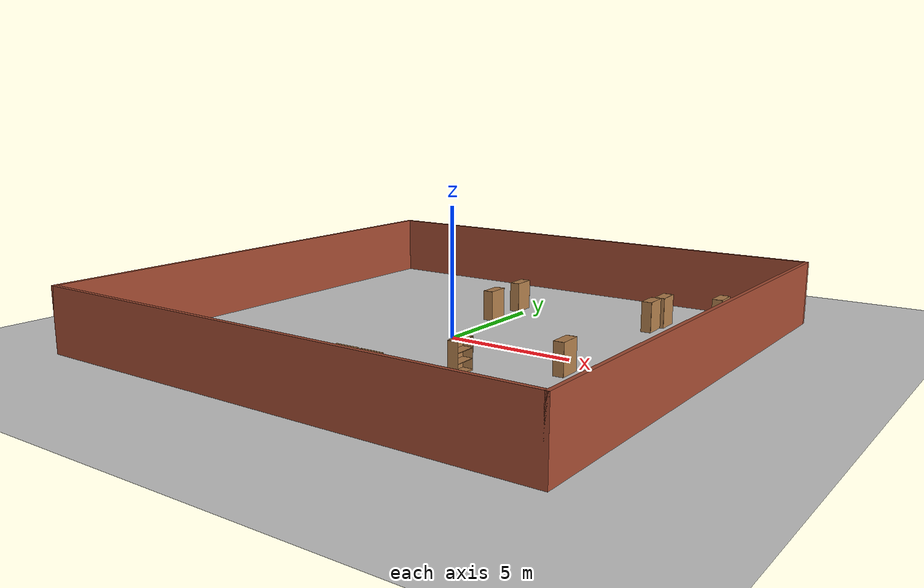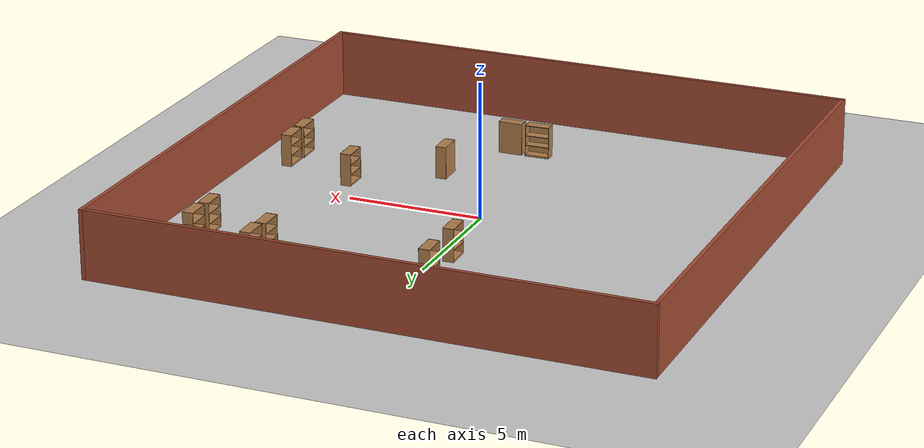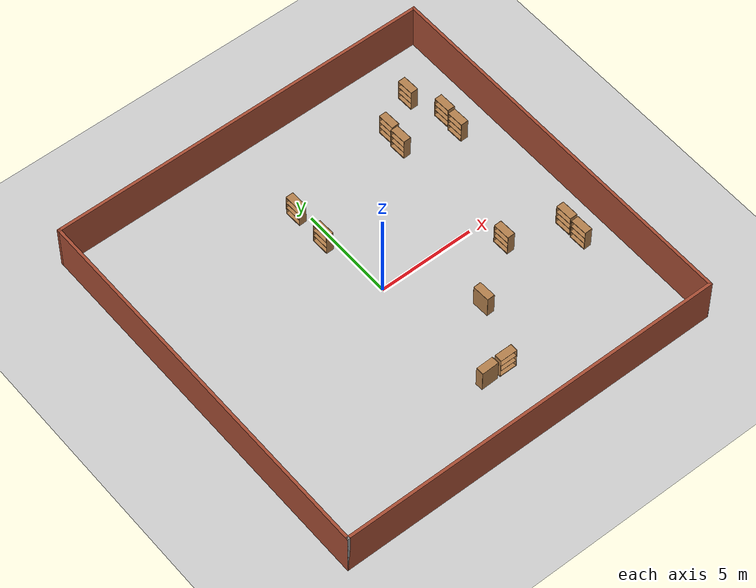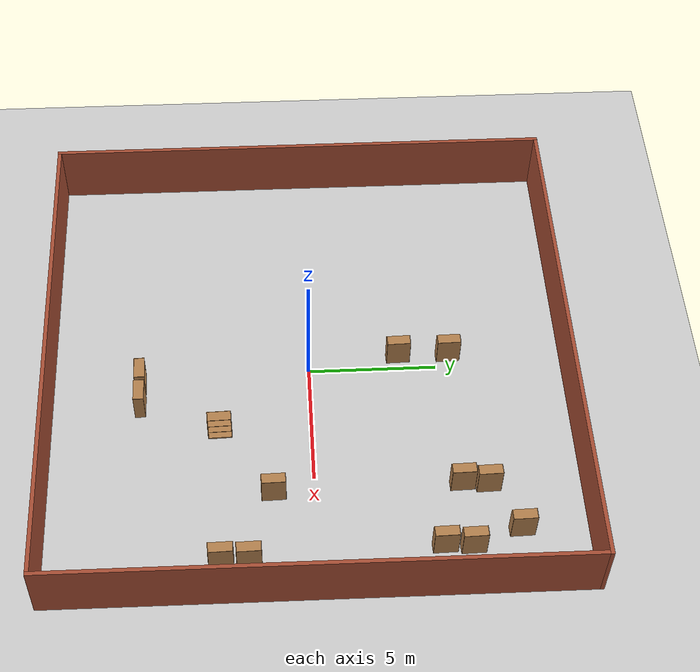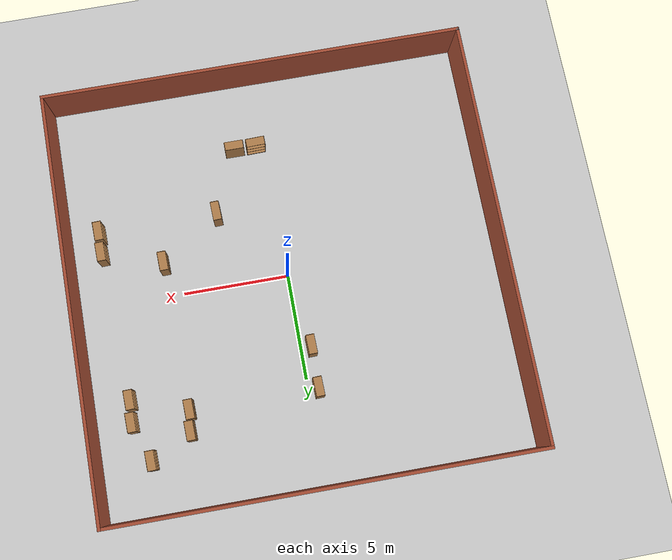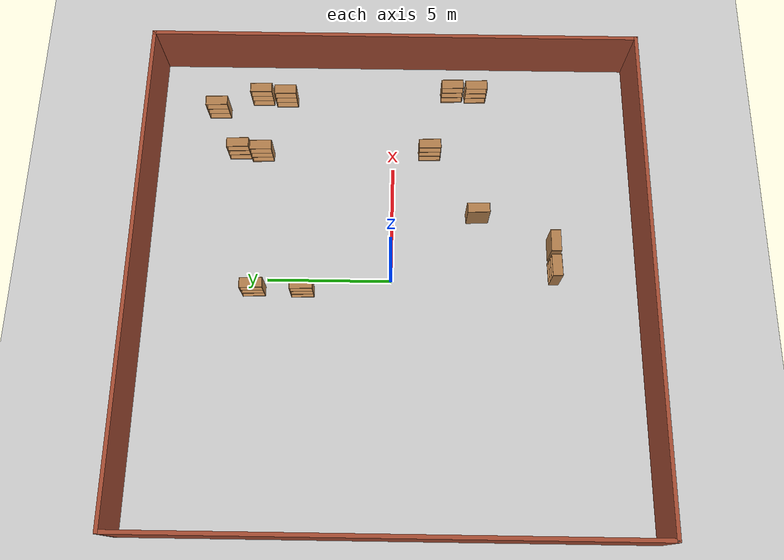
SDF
<sdf version="1.6">
 <world name="default">
  <model name="ground_plane">
   <static>1</static>
   <link name="link">
    <collision name="collision">
     <geometry><plane><normal>0 0 1</normal><size>100 100</size></plane></geometry>
     <surface>
      <contact><collide_bitmask>65535</collide_bitmask></contact>
      <friction><ode><mu>100</mu><mu2>50</mu2></ode></friction>
     </surface>
    </collision>
    <visual name="visual">
     <cast_shadows>0</cast_shadows>
     <geometry><plane><normal>0 0 1</normal><size>100 100</size></plane></geometry>
     <material>
      <script><uri>file://media/materials/scripts/gazebo.material</uri><name>Gazebo/Grey</name></script>
     </material>
    </visual>
   </link>
  </model>
  <model name="30x30env"><static>1</static><pose>32.1206 3.39752 0 0 -0 0</pose></model>
  <model name="wall_20">
   <link name="Wall_0">
    <collision name="Wall_0_Collision">
     <geometry><box><size>20.15 0.15 2.5</size></box></geometry>
     <pose>0 0 1.25 0 -0 0</pose>
    </collision>
    <visual name="Wall_0_Visual">
     <pose>0 0 1.25 0 -0 0</pose>
     <geometry><box><size>20.15 0.15 2.5</size></box></geometry>
     <material>
      <script><uri>file://media/materials/scripts/gazebo.material</uri><name>Gazebo/Bricks</name></script>
      <ambient>1 1 1 1</ambient>
     </material>
     <meta><layer>0</layer></meta>
    </visual>
    <pose>0 10 0 0 -0 3.14159</pose>
   </link>
   <link name="Wall_2">
    <collision name="Wall_2_Collision">
     <geometry><box><size>20.15 0.15 2.5</size></box></geometry>
     <pose>0 0 1.25 0 -0 0</pose>
    </collision>
    <visual name="Wall_2_Visual">
     <pose>0 0 1.25 0 -0 0</pose>
     <geometry><box><size>20.15 0.15 2.5</size></box></geometry>
     <material>
      <script><uri>file://media/materials/scripts/gazebo.material</uri><name>Gazebo/Bricks</name></script>
      <ambient>1 1 1 1</ambient>
     </material>
     <meta><layer>0</layer></meta>
    </visual>
    <pose>10 0 0 0 -0 1.5708</pose>
   </link>
   <link name="Wall_4">
    <collision name="Wall_4_Collision">
     <geometry><box><size>20.15 0.15 2.5</size></box></geometry>
     <pose>0 0 1.25 0 -0 0</pose>
    </collision>
    <visual name="Wall_4_Visual">
     <pose>0 0 1.25 0 -0 0</pose>
     <geometry><box><size>20.15 0.15 2.5</size></box></geometry>
     <material>
      <script><uri>file://media/materials/scripts/gazebo.material</uri><name>Gazebo/Bricks</name></script>
      <ambient>1 1 1 1</ambient>
     </material>
     <meta><layer>0</layer></meta>
    </visual>
    <pose>0 -10 0 0 -0 0</pose>
   </link>
   <link name="Wall_6">
    <collision name="Wall_6_Collision">
     <geometry><box><size>0.15 0.15 2.5</size></box></geometry>
     <pose>0 0 1.25 0 -0 0</pose>
    </collision>
    <visual name="Wall_6_Visual">
     <pose>0 0 1.25 0 -0 0</pose>
     <geometry><box><size>0.15 0.15 2.5</size></box></geometry>
     <material>
      <script><uri>file://media/materials/scripts/gazebo.material</uri><name>Gazebo/Grey</name></script>
      <ambient>1 1 1 1</ambient>
     </material>
     <meta><layer>0</layer></meta>
    </visual>
    <pose>-10 -10 0 0 -0 0</pose>
   </link>
   <link name="Wall_8">
    <collision name="Wall_8_Collision">
     <geometry><box><size>20.15 0.15 2.5</size></box></geometry>
     <pose>0 0 1.25 0 -0 0</pose>
    </collision>
    <visual name="Wall_8_Visual">
     <pose>0 0 1.25 0 -0 0</pose>
     <geometry><box><size>20.15 0.15 2.5</size></box></geometry>
     <material>
      <script><uri>file://media/materials/scripts/gazebo.material</uri><name>Gazebo/Bricks</name></script>
      <ambient>1 1 1 1</ambient>
     </material>
     <meta><layer>0</layer></meta>
    </visual>
    <pose>-10 0 0 0 -0 -1.5708</pose>
   </link>
   <static>1</static>
  </model>
  <model name="bookshelf_clone_2_clone_clone_1">
   <static>1</static>
   <link name="link">
    <inertial><mass>1</mass></inertial>
    <collision name="back">
     <pose>0 0.005 0.6 0 -0 0</pose>
     <geometry><box><size>0.9 0.01 1.2</size></box></geometry>
    </collision>
    <visual name="visual1">
     <pose>0 0.005 0.6 0 -0 0</pose>
     <geometry><box><size>0.9 0.01 1.2</size></box></geometry>
     <material>
      <script><uri>file://media/materials/scripts/gazebo.material</uri><name>Gazebo/Wood</name></script>
     </material>
    </visual>
    <collision name="left_side">
     <pose>0.45 -0.195 0.6 0 -0 0</pose>
     <geometry><box><size>0.02 0.4 1.2</size></box></geometry>
    </collision>
    <visual name="visual2">
     <pose>0.45 -0.195 0.6 0 -0 0</pose>
     <geometry><box><size>0.02 0.4 1.2</size></box></geometry>
     <material>
      <script><uri>file://media/materials/scripts/gazebo.material</uri><name>Gazebo/Wood</name></script>
     </material>
    </visual>
    <collision name="right_side">
     <pose>-0.45 -0.195 0.6 0 -0 0</pose>
     <geometry><box><size>0.02 0.4 1.2</size></box></geometry>
    </collision>
    <visual name="visual3">
     <pose>-0.45 -0.195 0.6 0 -0 0</pose>
     <geometry><box><size>0.02 0.4 1.2</size></box></geometry>
     <material>
      <script><uri>file://media/materials/scripts/gazebo.material</uri><name>Gazebo/Wood</name></script>
     </material>
    </visual>
    <collision name="bottom">
     <pose>0 -0.195 0.03 0 -0 0</pose>
     <geometry><box><size>0.88 0.4 0.06</size></box></geometry>
    </collision>
    <visual name="visual4">
     <pose>0 -0.195 0.03 0 -0 0</pose>
     <geometry><box><size>0.88 0.4 0.06</size></box></geometry>
     <material>
      <script><uri>file://media/materials/scripts/gazebo.material</uri><name>Gazebo/Wood</name></script>
     </material>
    </visual>
    <collision name="top">
     <pose>0 -0.195 1.19 0 -0 0</pose>
     <geometry><box><size>0.88 0.4 0.02</size></box></geometry>
    </collision>
    <visual name="visual5">
     <pose>0 -0.195 1.19 0 -0 0</pose>
     <geometry><box><size>0.88 0.4 0.02</size></box></geometry>
     <material>
      <script><uri>file://media/materials/scripts/gazebo.material</uri><name>Gazebo/Wood</name></script>
     </material>
    </visual>
    <collision name="low_shelf">
     <pose>0 -0.195 0.43 0 -0 0</pose>
     <geometry><box><size>0.88 0.4 0.02</size></box></geometry>
    </collision>
    <visual name="visual6">
     <pose>0 -0.195 0.43 0 -0 0</pose>
     <geometry><box><size>0.88 0.4 0.02</size></box></geometry>
     <material>
      <script><uri>file://media/materials/scripts/gazebo.material</uri><name>Gazebo/Wood</name></script>
     </material>
    </visual>
    <collision name="high_shelf">
     <pose>0 -0.195 0.8 0 -0 0</pose>
     <geometry><box><size>0.88 0.4 0.02</size></box></geometry>
    </collision>
    <visual name="visual7">
     <pose>0 -0.195 0.8 0 -0 0</pose>
     <geometry><box><size>0.88 0.4 0.02</size></box></geometry>
     <material>
      <script><uri>file://media/materials/scripts/gazebo.material</uri><name>Gazebo/Wood</name></script>
     </material>
    </visual>
   </link>
   <pose>-0.281422 5.51302 0 0 0 -1.54502</pose>
  </model>
  <model name="bookshelf_clone_2_clone_clone_2">
   <static>1</static>
   <link name="link">
    <inertial><mass>1</mass></inertial>
    <collision name="back">
     <pose>0 0.005 0.6 0 -0 0</pose>
     <geometry><box><size>0.9 0.01 1.2</size></box></geometry>
    </collision>
    <visual name="visual1">
     <pose>0 0.005 0.6 0 -0 0</pose>
     <geometry><box><size>0.9 0.01 1.2</size></box></geometry>
     <material>
      <script><uri>file://media/materials/scripts/gazebo.material</uri><name>Gazebo/Wood</name></script>
     </material>
    </visual>
    <collision name="left_side">
     <pose>0.45 -0.195 0.6 0 -0 0</pose>
     <geometry><box><size>0.02 0.4 1.2</size></box></geometry>
    </collision>
    <visual name="visual2">
     <pose>0.45 -0.195 0.6 0 -0 0</pose>
     <geometry><box><size>0.02 0.4 1.2</size></box></geometry>
     <material>
      <script><uri>file://media/materials/scripts/gazebo.material</uri><name>Gazebo/Wood</name></script>
     </material>
    </visual>
    <collision name="right_side">
     <pose>-0.45 -0.195 0.6 0 -0 0</pose>
     <geometry><box><size>0.02 0.4 1.2</size></box></geometry>
    </collision>
    <visual name="visual3">
     <pose>-0.45 -0.195 0.6 0 -0 0</pose>
     <geometry><box><size>0.02 0.4 1.2</size></box></geometry>
     <material>
      <script><uri>file://media/materials/scripts/gazebo.material</uri><name>Gazebo/Wood</name></script>
     </material>
    </visual>
    <collision name="bottom">
     <pose>0 -0.195 0.03 0 -0 0</pose>
     <geometry><box><size>0.88 0.4 0.06</size></box></geometry>
    </collision>
    <visual name="visual4">
     <pose>0 -0.195 0.03 0 -0 0</pose>
     <geometry><box><size>0.88 0.4 0.06</size></box></geometry>
     <material>
      <script><uri>file://media/materials/scripts/gazebo.material</uri><name>Gazebo/Wood</name></script>
     </material>
    </visual>
    <collision name="top">
     <pose>0 -0.195 1.19 0 -0 0</pose>
     <geometry><box><size>0.88 0.4 0.02</size></box></geometry>
    </collision>
    <visual name="visual5">
     <pose>0 -0.195 1.19 0 -0 0</pose>
     <geometry><box><size>0.88 0.4 0.02</size></box></geometry>
     <material>
      <script><uri>file://media/materials/scripts/gazebo.material</uri><name>Gazebo/Wood</name></script>
     </material>
    </visual>
    <collision name="low_shelf">
     <pose>0 -0.195 0.43 0 -0 0</pose>
     <geometry><box><size>0.88 0.4 0.02</size></box></geometry>
    </collision>
    <visual name="visual6">
     <pose>0 -0.195 0.43 0 -0 0</pose>
     <geometry><box><size>0.88 0.4 0.02</size></box></geometry>
     <material>
      <script><uri>file://media/materials/scripts/gazebo.material</uri><name>Gazebo/Wood</name></script>
     </material>
    </visual>
    <collision name="high_shelf">
     <pose>0 -0.195 0.8 0 -0 0</pose>
     <geometry><box><size>0.88 0.4 0.02</size></box></geometry>
    </collision>
    <visual name="visual7">
     <pose>0 -0.195 0.8 0 -0 0</pose>
     <geometry><box><size>0.88 0.4 0.02</size></box></geometry>
     <material>
      <script><uri>file://media/materials/scripts/gazebo.material</uri><name>Gazebo/Wood</name></script>
     </material>
    </visual>
   </link>
   <pose>-0.298553 3.54897 0 0 0 -1.54502</pose>
  </model>
  <model name="bookshelf_clone_2_clone_clone_2_clone">
   <static>1</static>
   <link name="link">
    <inertial><mass>1</mass></inertial>
    <collision name="back">
     <pose>0 0.005 0.6 0 -0 0</pose>
     <geometry><box><size>0.9 0.01 1.2</size></box></geometry>
    </collision>
    <visual name="visual1">
     <pose>0 0.005 0.6 0 -0 0</pose>
     <geometry><box><size>0.9 0.01 1.2</size></box></geometry>
     <material>
      <script><uri>file://media/materials/scripts/gazebo.material</uri><name>Gazebo/Wood</name></script>
     </material>
    </visual>
    <collision name="left_side">
     <pose>0.45 -0.195 0.6 0 -0 0</pose>
     <geometry><box><size>0.02 0.4 1.2</size></box></geometry>
    </collision>
    <visual name="visual2">
     <pose>0.45 -0.195 0.6 0 -0 0</pose>
     <geometry><box><size>0.02 0.4 1.2</size></box></geometry>
     <material>
      <script><uri>file://media/materials/scripts/gazebo.material</uri><name>Gazebo/Wood</name></script>
     </material>
    </visual>
    <collision name="right_side">
     <pose>-0.45 -0.195 0.6 0 -0 0</pose>
     <geometry><box><size>0.02 0.4 1.2</size></box></geometry>
    </collision>
    <visual name="visual3">
     <pose>-0.45 -0.195 0.6 0 -0 0</pose>
     <geometry><box><size>0.02 0.4 1.2</size></box></geometry>
     <material>
      <script><uri>file://media/materials/scripts/gazebo.material</uri><name>Gazebo/Wood</name></script>
     </material>
    </visual>
    <collision name="bottom">
     <pose>0 -0.195 0.03 0 -0 0</pose>
     <geometry><box><size>0.88 0.4 0.06</size></box></geometry>
    </collision>
    <visual name="visual4">
     <pose>0 -0.195 0.03 0 -0 0</pose>
     <geometry><box><size>0.88 0.4 0.06</size></box></geometry>
     <material>
      <script><uri>file://media/materials/scripts/gazebo.material</uri><name>Gazebo/Wood</name></script>
     </material>
    </visual>
    <collision name="top">
     <pose>0 -0.195 1.19 0 -0 0</pose>
     <geometry><box><size>0.88 0.4 0.02</size></box></geometry>
    </collision>
    <visual name="visual5">
     <pose>0 -0.195 1.19 0 -0 0</pose>
     <geometry><box><size>0.88 0.4 0.02</size></box></geometry>
     <material>
      <script><uri>file://media/materials/scripts/gazebo.material</uri><name>Gazebo/Wood</name></script>
     </material>
    </visual>
    <collision name="low_shelf">
     <pose>0 -0.195 0.43 0 -0 0</pose>
     <geometry><box><size>0.88 0.4 0.02</size></box></geometry>
    </collision>
    <visual name="visual6">
     <pose>0 -0.195 0.43 0 -0 0</pose>
     <geometry><box><size>0.88 0.4 0.02</size></box></geometry>
     <material>
      <script><uri>file://media/materials/scripts/gazebo.material</uri><name>Gazebo/Wood</name></script>
     </material>
    </visual>
    <collision name="high_shelf">
     <pose>0 -0.195 0.8 0 -0 0</pose>
     <geometry><box><size>0.88 0.4 0.02</size></box></geometry>
    </collision>
    <visual name="visual7">
     <pose>0 -0.195 0.8 0 -0 0</pose>
     <geometry><box><size>0.88 0.4 0.02</size></box></geometry>
     <material>
      <script><uri>file://media/materials/scripts/gazebo.material</uri><name>Gazebo/Wood</name></script>
     </material>
    </visual>
   </link>
   <pose>5.72576 5.49672 0 0 0 -1.54502</pose>
  </model>
  <model name="bookshelf_clone_2_clone_clone_2_clone_0">
   <static>1</static>
   <link name="link">
    <inertial><mass>1</mass></inertial>
    <collision name="back">
     <pose>0 0.005 0.6 0 -0 0</pose>
     <geometry><box><size>0.9 0.01 1.2</size></box></geometry>
    </collision>
    <visual name="visual1">
     <pose>0 0.005 0.6 0 -0 0</pose>
     <geometry><box><size>0.9 0.01 1.2</size></box></geometry>
     <material>
      <script><uri>file://media/materials/scripts/gazebo.material</uri><name>Gazebo/Wood</name></script>
     </material>
    </visual>
    <collision name="left_side">
     <pose>0.45 -0.195 0.6 0 -0 0</pose>
     <geometry><box><size>0.02 0.4 1.2</size></box></geometry>
    </collision>
    <visual name="visual2">
     <pose>0.45 -0.195 0.6 0 -0 0</pose>
     <geometry><box><size>0.02 0.4 1.2</size></box></geometry>
     <material>
      <script><uri>file://media/materials/scripts/gazebo.material</uri><name>Gazebo/Wood</name></script>
     </material>
    </visual>
    <collision name="right_side">
     <pose>-0.45 -0.195 0.6 0 -0 0</pose>
     <geometry><box><size>0.02 0.4 1.2</size></box></geometry>
    </collision>
    <visual name="visual3">
     <pose>-0.45 -0.195 0.6 0 -0 0</pose>
     <geometry><box><size>0.02 0.4 1.2</size></box></geometry>
     <material>
      <script><uri>file://media/materials/scripts/gazebo.material</uri><name>Gazebo/Wood</name></script>
     </material>
    </visual>
    <collision name="bottom">
     <pose>0 -0.195 0.03 0 -0 0</pose>
     <geometry><box><size>0.88 0.4 0.06</size></box></geometry>
    </collision>
    <visual name="visual4">
     <pose>0 -0.195 0.03 0 -0 0</pose>
     <geometry><box><size>0.88 0.4 0.06</size></box></geometry>
     <material>
      <script><uri>file://media/materials/scripts/gazebo.material</uri><name>Gazebo/Wood</name></script>
     </material>
    </visual>
    <collision name="top">
     <pose>0 -0.195 1.19 0 -0 0</pose>
     <geometry><box><size>0.88 0.4 0.02</size></box></geometry>
    </collision>
    <visual name="visual5">
     <pose>0 -0.195 1.19 0 -0 0</pose>
     <geometry><box><size>0.88 0.4 0.02</size></box></geometry>
     <material>
      <script><uri>file://media/materials/scripts/gazebo.material</uri><name>Gazebo/Wood</name></script>
     </material>
    </visual>
    <collision name="low_shelf">
     <pose>0 -0.195 0.43 0 -0 0</pose>
     <geometry><box><size>0.88 0.4 0.02</size></box></geometry>
    </collision>
    <visual name="visual6">
     <pose>0 -0.195 0.43 0 -0 0</pose>
     <geometry><box><size>0.88 0.4 0.02</size></box></geometry>
     <material>
      <script><uri>file://media/materials/scripts/gazebo.material</uri><name>Gazebo/Wood</name></script>
     </material>
    </visual>
    <collision name="high_shelf">
     <pose>0 -0.195 0.8 0 -0 0</pose>
     <geometry><box><size>0.88 0.4 0.02</size></box></geometry>
    </collision>
    <visual name="visual7">
     <pose>0 -0.195 0.8 0 -0 0</pose>
     <geometry><box><size>0.88 0.4 0.02</size></box></geometry>
     <material>
      <script><uri>file://media/materials/scripts/gazebo.material</uri><name>Gazebo/Wood</name></script>
     </material>
    </visual>
   </link>
   <pose>5.82829 6.45312 0 0 0 -1.54502</pose>
  </model>
  <model name="bookshelf_clone_2_clone_clone_2_clone_1">
   <static>1</static>
   <link name="link">
    <inertial><mass>1</mass></inertial>
    <collision name="back">
     <pose>0 0.005 0.6 0 -0 0</pose>
     <geometry><box><size>0.9 0.01 1.2</size></box></geometry>
    </collision>
    <visual name="visual1">
     <pose>0 0.005 0.6 0 -0 0</pose>
     <geometry><box><size>0.9 0.01 1.2</size></box></geometry>
     <material>
      <script><uri>file://media/materials/scripts/gazebo.material</uri><name>Gazebo/Wood</name></script>
     </material>
    </visual>
    <collision name="left_side">
     <pose>0.45 -0.195 0.6 0 -0 0</pose>
     <geometry><box><size>0.02 0.4 1.2</size></box></geometry>
    </collision>
    <visual name="visual2">
     <pose>0.45 -0.195 0.6 0 -0 0</pose>
     <geometry><box><size>0.02 0.4 1.2</size></box></geometry>
     <material>
      <script><uri>file://media/materials/scripts/gazebo.material</uri><name>Gazebo/Wood</name></script>
     </material>
    </visual>
    <collision name="right_side">
     <pose>-0.45 -0.195 0.6 0 -0 0</pose>
     <geometry><box><size>0.02 0.4 1.2</size></box></geometry>
    </collision>
    <visual name="visual3">
     <pose>-0.45 -0.195 0.6 0 -0 0</pose>
     <geometry><box><size>0.02 0.4 1.2</size></box></geometry>
     <material>
      <script><uri>file://media/materials/scripts/gazebo.material</uri><name>Gazebo/Wood</name></script>
     </material>
    </visual>
    <collision name="bottom">
     <pose>0 -0.195 0.03 0 -0 0</pose>
     <geometry><box><size>0.88 0.4 0.06</size></box></geometry>
    </collision>
    <visual name="visual4">
     <pose>0 -0.195 0.03 0 -0 0</pose>
     <geometry><box><size>0.88 0.4 0.06</size></box></geometry>
     <material>
      <script><uri>file://media/materials/scripts/gazebo.material</uri><name>Gazebo/Wood</name></script>
     </material>
    </visual>
    <collision name="top">
     <pose>0 -0.195 1.19 0 -0 0</pose>
     <geometry><box><size>0.88 0.4 0.02</size></box></geometry>
    </collision>
    <visual name="visual5">
     <pose>0 -0.195 1.19 0 -0 0</pose>
     <geometry><box><size>0.88 0.4 0.02</size></box></geometry>
     <material>
      <script><uri>file://media/materials/scripts/gazebo.material</uri><name>Gazebo/Wood</name></script>
     </material>
    </visual>
    <collision name="low_shelf">
     <pose>0 -0.195 0.43 0 -0 0</pose>
     <geometry><box><size>0.88 0.4 0.02</size></box></geometry>
    </collision>
    <visual name="visual6">
     <pose>0 -0.195 0.43 0 -0 0</pose>
     <geometry><box><size>0.88 0.4 0.02</size></box></geometry>
     <material>
      <script><uri>file://media/materials/scripts/gazebo.material</uri><name>Gazebo/Wood</name></script>
     </material>
    </visual>
    <collision name="high_shelf">
     <pose>0 -0.195 0.8 0 -0 0</pose>
     <geometry><box><size>0.88 0.4 0.02</size></box></geometry>
    </collision>
    <visual name="visual7">
     <pose>0 -0.195 0.8 0 -0 0</pose>
     <geometry><box><size>0.88 0.4 0.02</size></box></geometry>
     <material>
      <script><uri>file://media/materials/scripts/gazebo.material</uri><name>Gazebo/Wood</name></script>
     </material>
    </visual>
   </link>
   <pose>7.77267 7.46685 0 0 0 -1.54502</pose>
  </model>
  <model name="bookshelf_clone_2_clone_clone_2_clone_3">
   <static>1</static>
   <link name="link">
    <inertial><mass>1</mass></inertial>
    <collision name="back">
     <pose>0 0.005 0.6 0 -0 0</pose>
     <geometry><box><size>0.9 0.01 1.2</size></box></geometry>
    </collision>
    <visual name="visual1">
     <pose>0 0.005 0.6 0 -0 0</pose>
     <geometry><box><size>0.9 0.01 1.2</size></box></geometry>
     <material>
      <script><uri>file://media/materials/scripts/gazebo.material</uri><name>Gazebo/Wood</name></script>
     </material>
    </visual>
    <collision name="left_side">
     <pose>0.45 -0.195 0.6 0 -0 0</pose>
     <geometry><box><size>0.02 0.4 1.2</size></box></geometry>
    </collision>
    <visual name="visual2">
     <pose>0.45 -0.195 0.6 0 -0 0</pose>
     <geometry><box><size>0.02 0.4 1.2</size></box></geometry>
     <material>
      <script><uri>file://media/materials/scripts/gazebo.material</uri><name>Gazebo/Wood</name></script>
     </material>
    </visual>
    <collision name="right_side">
     <pose>-0.45 -0.195 0.6 0 -0 0</pose>
     <geometry><box><size>0.02 0.4 1.2</size></box></geometry>
    </collision>
    <visual name="visual3">
     <pose>-0.45 -0.195 0.6 0 -0 0</pose>
     <geometry><box><size>0.02 0.4 1.2</size></box></geometry>
     <material>
      <script><uri>file://media/materials/scripts/gazebo.material</uri><name>Gazebo/Wood</name></script>
     </material>
    </visual>
    <collision name="bottom">
     <pose>0 -0.195 0.03 0 -0 0</pose>
     <geometry><box><size>0.88 0.4 0.06</size></box></geometry>
    </collision>
    <visual name="visual4">
     <pose>0 -0.195 0.03 0 -0 0</pose>
     <geometry><box><size>0.88 0.4 0.06</size></box></geometry>
     <material>
      <script><uri>file://media/materials/scripts/gazebo.material</uri><name>Gazebo/Wood</name></script>
     </material>
    </visual>
    <collision name="top">
     <pose>0 -0.195 1.19 0 -0 0</pose>
     <geometry><box><size>0.88 0.4 0.02</size></box></geometry>
    </collision>
    <visual name="visual5">
     <pose>0 -0.195 1.19 0 -0 0</pose>
     <geometry><box><size>0.88 0.4 0.02</size></box></geometry>
     <material>
      <script><uri>file://media/materials/scripts/gazebo.material</uri><name>Gazebo/Wood</name></script>
     </material>
    </visual>
    <collision name="low_shelf">
     <pose>0 -0.195 0.43 0 -0 0</pose>
     <geometry><box><size>0.88 0.4 0.02</size></box></geometry>
    </collision>
    <visual name="visual6">
     <pose>0 -0.195 0.43 0 -0 0</pose>
     <geometry><box><size>0.88 0.4 0.02</size></box></geometry>
     <material>
      <script><uri>file://media/materials/scripts/gazebo.material</uri><name>Gazebo/Wood</name></script>
     </material>
    </visual>
    <collision name="high_shelf">
     <pose>0 -0.195 0.8 0 -0 0</pose>
     <geometry><box><size>0.88 0.4 0.02</size></box></geometry>
    </collision>
    <visual name="visual7">
     <pose>0 -0.195 0.8 0 -0 0</pose>
     <geometry><box><size>0.88 0.4 0.02</size></box></geometry>
     <material>
      <script><uri>file://media/materials/scripts/gazebo.material</uri><name>Gazebo/Wood</name></script>
     </material>
    </visual>
   </link>
   <pose>8.41698 5.62918 0 0 0 -1.54502</pose>
  </model>
  <model name="bookshelf_clone_2_clone_clone_2_clone_4">
   <static>1</static>
   <link name="link">
    <inertial><mass>1</mass></inertial>
    <collision name="back">
     <pose>0 0.005 0.6 0 -0 0</pose>
     <geometry><box><size>0.9 0.01 1.2</size></box></geometry>
    </collision>
    <visual name="visual1">
     <pose>0 0.005 0.6 0 -0 0</pose>
     <geometry><box><size>0.9 0.01 1.2</size></box></geometry>
     <material>
      <script><uri>file://media/materials/scripts/gazebo.material</uri><name>Gazebo/Wood</name></script>
     </material>
    </visual>
    <collision name="left_side">
     <pose>0.45 -0.195 0.6 0 -0 0</pose>
     <geometry><box><size>0.02 0.4 1.2</size></box></geometry>
    </collision>
    <visual name="visual2">
     <pose>0.45 -0.195 0.6 0 -0 0</pose>
     <geometry><box><size>0.02 0.4 1.2</size></box></geometry>
     <material>
      <script><uri>file://media/materials/scripts/gazebo.material</uri><name>Gazebo/Wood</name></script>
     </material>
    </visual>
    <collision name="right_side">
     <pose>-0.45 -0.195 0.6 0 -0 0</pose>
     <geometry><box><size>0.02 0.4 1.2</size></box></geometry>
    </collision>
    <visual name="visual3">
     <pose>-0.45 -0.195 0.6 0 -0 0</pose>
     <geometry><box><size>0.02 0.4 1.2</size></box></geometry>
     <material>
      <script><uri>file://media/materials/scripts/gazebo.material</uri><name>Gazebo/Wood</name></script>
     </material>
    </visual>
    <collision name="bottom">
     <pose>0 -0.195 0.03 0 -0 0</pose>
     <geometry><box><size>0.88 0.4 0.06</size></box></geometry>
    </collision>
    <visual name="visual4">
     <pose>0 -0.195 0.03 0 -0 0</pose>
     <geometry><box><size>0.88 0.4 0.06</size></box></geometry>
     <material>
      <script><uri>file://media/materials/scripts/gazebo.material</uri><name>Gazebo/Wood</name></script>
     </material>
    </visual>
    <collision name="top">
     <pose>0 -0.195 1.19 0 -0 0</pose>
     <geometry><box><size>0.88 0.4 0.02</size></box></geometry>
    </collision>
    <visual name="visual5">
     <pose>0 -0.195 1.19 0 -0 0</pose>
     <geometry><box><size>0.88 0.4 0.02</size></box></geometry>
     <material>
      <script><uri>file://media/materials/scripts/gazebo.material</uri><name>Gazebo/Wood</name></script>
     </material>
    </visual>
    <collision name="low_shelf">
     <pose>0 -0.195 0.43 0 -0 0</pose>
     <geometry><box><size>0.88 0.4 0.02</size></box></geometry>
    </collision>
    <visual name="visual6">
     <pose>0 -0.195 0.43 0 -0 0</pose>
     <geometry><box><size>0.88 0.4 0.02</size></box></geometry>
     <material>
      <script><uri>file://media/materials/scripts/gazebo.material</uri><name>Gazebo/Wood</name></script>
     </material>
    </visual>
    <collision name="high_shelf">
     <pose>0 -0.195 0.8 0 -0 0</pose>
     <geometry><box><size>0.88 0.4 0.02</size></box></geometry>
    </collision>
    <visual name="visual7">
     <pose>0 -0.195 0.8 0 -0 0</pose>
     <geometry><box><size>0.88 0.4 0.02</size></box></geometry>
     <material>
      <script><uri>file://media/materials/scripts/gazebo.material</uri><name>Gazebo/Wood</name></script>
     </material>
    </visual>
   </link>
   <pose>8.3494 4.60701 0 0 0 -1.54502</pose>
  </model>
  <model name="bookshelf_clone_2_clone_clone_2_clone_clone">
   <static>1</static>
   <link name="link">
    <inertial><mass>1</mass></inertial>
    <collision name="back">
     <pose>0 0.005 0.6 0 -0 0</pose>
     <geometry><box><size>0.9 0.01 1.2</size></box></geometry>
    </collision>
    <visual name="visual1">
     <pose>0 0.005 0.6 0 -0 0</pose>
     <geometry><box><size>0.9 0.01 1.2</size></box></geometry>
     <material>
      <script><uri>file://media/materials/scripts/gazebo.material</uri><name>Gazebo/Wood</name></script>
     </material>
    </visual>
    <collision name="left_side">
     <pose>0.45 -0.195 0.6 0 -0 0</pose>
     <geometry><box><size>0.02 0.4 1.2</size></box></geometry>
    </collision>
    <visual name="visual2">
     <pose>0.45 -0.195 0.6 0 -0 0</pose>
     <geometry><box><size>0.02 0.4 1.2</size></box></geometry>
     <material>
      <script><uri>file://media/materials/scripts/gazebo.material</uri><name>Gazebo/Wood</name></script>
     </material>
    </visual>
    <collision name="right_side">
     <pose>-0.45 -0.195 0.6 0 -0 0</pose>
     <geometry><box><size>0.02 0.4 1.2</size></box></geometry>
    </collision>
    <visual name="visual3">
     <pose>-0.45 -0.195 0.6 0 -0 0</pose>
     <geometry><box><size>0.02 0.4 1.2</size></box></geometry>
     <material>
      <script><uri>file://media/materials/scripts/gazebo.material</uri><name>Gazebo/Wood</name></script>
     </material>
    </visual>
    <collision name="bottom">
     <pose>0 -0.195 0.03 0 -0 0</pose>
     <geometry><box><size>0.88 0.4 0.06</size></box></geometry>
    </collision>
    <visual name="visual4">
     <pose>0 -0.195 0.03 0 -0 0</pose>
     <geometry><box><size>0.88 0.4 0.06</size></box></geometry>
     <material>
      <script><uri>file://media/materials/scripts/gazebo.material</uri><name>Gazebo/Wood</name></script>
     </material>
    </visual>
    <collision name="top">
     <pose>0 -0.195 1.19 0 -0 0</pose>
     <geometry><box><size>0.88 0.4 0.02</size></box></geometry>
    </collision>
    <visual name="visual5">
     <pose>0 -0.195 1.19 0 -0 0</pose>
     <geometry><box><size>0.88 0.4 0.02</size></box></geometry>
     <material>
      <script><uri>file://media/materials/scripts/gazebo.material</uri><name>Gazebo/Wood</name></script>
     </material>
    </visual>
    <collision name="low_shelf">
     <pose>0 -0.195 0.43 0 -0 0</pose>
     <geometry><box><size>0.88 0.4 0.02</size></box></geometry>
    </collision>
    <visual name="visual6">
     <pose>0 -0.195 0.43 0 -0 0</pose>
     <geometry><box><size>0.88 0.4 0.02</size></box></geometry>
     <material>
      <script><uri>file://media/materials/scripts/gazebo.material</uri><name>Gazebo/Wood</name></script>
     </material>
    </visual>
    <collision name="high_shelf">
     <pose>0 -0.195 0.8 0 -0 0</pose>
     <geometry><box><size>0.88 0.4 0.02</size></box></geometry>
    </collision>
    <visual name="visual7">
     <pose>0 -0.195 0.8 0 -0 0</pose>
     <geometry><box><size>0.88 0.4 0.02</size></box></geometry>
     <material>
      <script><uri>file://media/materials/scripts/gazebo.material</uri><name>Gazebo/Wood</name></script>
     </material>
    </visual>
   </link>
   <pose>8.69019 -2.46941 0 0 0 -1.54502</pose>
  </model>
  <model name="bookshelf_clone_2_clone_clone_2_clone_clone_0">
   <static>1</static>
   <link name="link">
    <inertial><mass>1</mass></inertial>
    <collision name="back">
     <pose>0 0.005 0.6 0 -0 0</pose>
     <geometry><box><size>0.9 0.01 1.2</size></box></geometry>
    </collision>
    <visual name="visual1">
     <pose>0 0.005 0.6 0 -0 0</pose>
     <geometry><box><size>0.9 0.01 1.2</size></box></geometry>
     <material>
      <script><uri>file://media/materials/scripts/gazebo.material</uri><name>Gazebo/Wood</name></script>
     </material>
    </visual>
    <collision name="left_side">
     <pose>0.45 -0.195 0.6 0 -0 0</pose>
     <geometry><box><size>0.02 0.4 1.2</size></box></geometry>
    </collision>
    <visual name="visual2">
     <pose>0.45 -0.195 0.6 0 -0 0</pose>
     <geometry><box><size>0.02 0.4 1.2</size></box></geometry>
     <material>
      <script><uri>file://media/materials/scripts/gazebo.material</uri><name>Gazebo/Wood</name></script>
     </material>
    </visual>
    <collision name="right_side">
     <pose>-0.45 -0.195 0.6 0 -0 0</pose>
     <geometry><box><size>0.02 0.4 1.2</size></box></geometry>
    </collision>
    <visual name="visual3">
     <pose>-0.45 -0.195 0.6 0 -0 0</pose>
     <geometry><box><size>0.02 0.4 1.2</size></box></geometry>
     <material>
      <script><uri>file://media/materials/scripts/gazebo.material</uri><name>Gazebo/Wood</name></script>
     </material>
    </visual>
    <collision name="bottom">
     <pose>0 -0.195 0.03 0 -0 0</pose>
     <geometry><box><size>0.88 0.4 0.06</size></box></geometry>
    </collision>
    <visual name="visual4">
     <pose>0 -0.195 0.03 0 -0 0</pose>
     <geometry><box><size>0.88 0.4 0.06</size></box></geometry>
     <material>
      <script><uri>file://media/materials/scripts/gazebo.material</uri><name>Gazebo/Wood</name></script>
     </material>
    </visual>
    <collision name="top">
     <pose>0 -0.195 1.19 0 -0 0</pose>
     <geometry><box><size>0.88 0.4 0.02</size></box></geometry>
    </collision>
    <visual name="visual5">
     <pose>0 -0.195 1.19 0 -0 0</pose>
     <geometry><box><size>0.88 0.4 0.02</size></box></geometry>
     <material>
      <script><uri>file://media/materials/scripts/gazebo.material</uri><name>Gazebo/Wood</name></script>
     </material>
    </visual>
    <collision name="low_shelf">
     <pose>0 -0.195 0.43 0 -0 0</pose>
     <geometry><box><size>0.88 0.4 0.02</size></box></geometry>
    </collision>
    <visual name="visual6">
     <pose>0 -0.195 0.43 0 -0 0</pose>
     <geometry><box><size>0.88 0.4 0.02</size></box></geometry>
     <material>
      <script><uri>file://media/materials/scripts/gazebo.material</uri><name>Gazebo/Wood</name></script>
     </material>
    </visual>
    <collision name="high_shelf">
     <pose>0 -0.195 0.8 0 -0 0</pose>
     <geometry><box><size>0.88 0.4 0.02</size></box></geometry>
    </collision>
    <visual name="visual7">
     <pose>0 -0.195 0.8 0 -0 0</pose>
     <geometry><box><size>0.88 0.4 0.02</size></box></geometry>
     <material>
      <script><uri>file://media/materials/scripts/gazebo.material</uri><name>Gazebo/Wood</name></script>
     </material>
    </visual>
   </link>
   <pose>8.67149 -3.47743 0 0 0 -1.54502</pose>
  </model>
  <model name="bookshelf_clone_2_clone_clone_0_clone">
   <static>1</static>
   <link name="link">
    <inertial><mass>1</mass></inertial>
    <collision name="back">
     <pose>0 0.005 0.6 0 -0 0</pose>
     <geometry><box><size>0.9 0.01 1.2</size></box></geometry>
    </collision>
    <visual name="visual1">
     <pose>0 0.005 0.6 0 -0 0</pose>
     <geometry><box><size>0.9 0.01 1.2</size></box></geometry>
     <material>
      <script><uri>file://media/materials/scripts/gazebo.material</uri><name>Gazebo/Wood</name></script>
     </material>
    </visual>
    <collision name="left_side">
     <pose>0.45 -0.195 0.6 0 -0 0</pose>
     <geometry><box><size>0.02 0.4 1.2</size></box></geometry>
    </collision>
    <visual name="visual2">
     <pose>0.45 -0.195 0.6 0 -0 0</pose>
     <geometry><box><size>0.02 0.4 1.2</size></box></geometry>
     <material>
      <script><uri>file://media/materials/scripts/gazebo.material</uri><name>Gazebo/Wood</name></script>
     </material>
    </visual>
    <collision name="right_side">
     <pose>-0.45 -0.195 0.6 0 -0 0</pose>
     <geometry><box><size>0.02 0.4 1.2</size></box></geometry>
    </collision>
    <visual name="visual3">
     <pose>-0.45 -0.195 0.6 0 -0 0</pose>
     <geometry><box><size>0.02 0.4 1.2</size></box></geometry>
     <material>
      <script><uri>file://media/materials/scripts/gazebo.material</uri><name>Gazebo/Wood</name></script>
     </material>
    </visual>
    <collision name="bottom">
     <pose>0 -0.195 0.03 0 -0 0</pose>
     <geometry><box><size>0.88 0.4 0.06</size></box></geometry>
    </collision>
    <visual name="visual4">
     <pose>0 -0.195 0.03 0 -0 0</pose>
     <geometry><box><size>0.88 0.4 0.06</size></box></geometry>
     <material>
      <script><uri>file://media/materials/scripts/gazebo.material</uri><name>Gazebo/Wood</name></script>
     </material>
    </visual>
    <collision name="top">
     <pose>0 -0.195 1.19 0 -0 0</pose>
     <geometry><box><size>0.88 0.4 0.02</size></box></geometry>
    </collision>
    <visual name="visual5">
     <pose>0 -0.195 1.19 0 -0 0</pose>
     <geometry><box><size>0.88 0.4 0.02</size></box></geometry>
     <material>
      <script><uri>file://media/materials/scripts/gazebo.material</uri><name>Gazebo/Wood</name></script>
     </material>
    </visual>
    <collision name="low_shelf">
     <pose>0 -0.195 0.43 0 -0 0</pose>
     <geometry><box><size>0.88 0.4 0.02</size></box></geometry>
    </collision>
    <visual name="visual6">
     <pose>0 -0.195 0.43 0 -0 0</pose>
     <geometry><box><size>0.88 0.4 0.02</size></box></geometry>
     <material>
      <script><uri>file://media/materials/scripts/gazebo.material</uri><name>Gazebo/Wood</name></script>
     </material>
    </visual>
    <collision name="high_shelf">
     <pose>0 -0.195 0.8 0 -0 0</pose>
     <geometry><box><size>0.88 0.4 0.02</size></box></geometry>
    </collision>
    <visual name="visual7">
     <pose>0 -0.195 0.8 0 -0 0</pose>
     <geometry><box><size>0.88 0.4 0.02</size></box></geometry>
     <material>
      <script><uri>file://media/materials/scripts/gazebo.material</uri><name>Gazebo/Wood</name></script>
     </material>
    </visual>
   </link>
   <pose>2.63991 -3.49647 0 0 -0 1.60567</pose>
  </model>
  <model name="bookshelf_clone_2_clone">
   <static>1</static>
   <link name="link">
    <inertial><mass>1</mass></inertial>
    <collision name="back">
     <pose>0 0.005 0.6 0 -0 0</pose>
     <geometry><box><size>0.9 0.01 1.2</size></box></geometry>
    </collision>
    <visual name="visual1">
     <pose>0 0.005 0.6 0 -0 0</pose>
     <geometry><box><size>0.9 0.01 1.2</size></box></geometry>
     <material>
      <script><uri>file://media/materials/scripts/gazebo.material</uri><name>Gazebo/Wood</name></script>
     </material>
    </visual>
    <collision name="left_side">
     <pose>0.45 -0.195 0.6 0 -0 0</pose>
     <geometry><box><size>0.02 0.4 1.2</size></box></geometry>
    </collision>
    <visual name="visual2">
     <pose>0.45 -0.195 0.6 0 -0 0</pose>
     <geometry><box><size>0.02 0.4 1.2</size></box></geometry>
     <material>
      <script><uri>file://media/materials/scripts/gazebo.material</uri><name>Gazebo/Wood</name></script>
     </material>
    </visual>
    <collision name="right_side">
     <pose>-0.45 -0.195 0.6 0 -0 0</pose>
     <geometry><box><size>0.02 0.4 1.2</size></box></geometry>
    </collision>
    <visual name="visual3">
     <pose>-0.45 -0.195 0.6 0 -0 0</pose>
     <geometry><box><size>0.02 0.4 1.2</size></box></geometry>
     <material>
      <script><uri>file://media/materials/scripts/gazebo.material</uri><name>Gazebo/Wood</name></script>
     </material>
    </visual>
    <collision name="bottom">
     <pose>0 -0.195 0.03 0 -0 0</pose>
     <geometry><box><size>0.88 0.4 0.06</size></box></geometry>
    </collision>
    <visual name="visual4">
     <pose>0 -0.195 0.03 0 -0 0</pose>
     <geometry><box><size>0.88 0.4 0.06</size></box></geometry>
     <material>
      <script><uri>file://media/materials/scripts/gazebo.material</uri><name>Gazebo/Wood</name></script>
     </material>
    </visual>
    <collision name="top">
     <pose>0 -0.195 1.19 0 -0 0</pose>
     <geometry><box><size>0.88 0.4 0.02</size></box></geometry>
    </collision>
    <visual name="visual5">
     <pose>0 -0.195 1.19 0 -0 0</pose>
     <geometry><box><size>0.88 0.4 0.02</size></box></geometry>
     <material>
      <script><uri>file://media/materials/scripts/gazebo.material</uri><name>Gazebo/Wood</name></script>
     </material>
    </visual>
    <collision name="low_shelf">
     <pose>0 -0.195 0.43 0 -0 0</pose>
     <geometry><box><size>0.88 0.4 0.02</size></box></geometry>
    </collision>
    <visual name="visual6">
     <pose>0 -0.195 0.43 0 -0 0</pose>
     <geometry><box><size>0.88 0.4 0.02</size></box></geometry>
     <material>
      <script><uri>file://media/materials/scripts/gazebo.material</uri><name>Gazebo/Wood</name></script>
     </material>
    </visual>
    <collision name="high_shelf">
     <pose>0 -0.195 0.8 0 -0 0</pose>
     <geometry><box><size>0.88 0.4 0.02</size></box></geometry>
    </collision>
    <visual name="visual7">
     <pose>0 -0.195 0.8 0 -0 0</pose>
     <geometry><box><size>0.88 0.4 0.02</size></box></geometry>
     <material>
      <script><uri>file://media/materials/scripts/gazebo.material</uri><name>Gazebo/Wood</name></script>
     </material>
    </visual>
   </link>
   <pose>1.47059 -6.35071 0 0 -0 0</pose>
  </model>
  <model name="bookshelf_clone_clone_0_clone">
   <static>1</static>
   <link name="link">
    <inertial><mass>1</mass></inertial>
    <collision name="back">
     <pose>0 0.005 0.6 0 -0 0</pose>
     <geometry><box><size>0.9 0.01 1.2</size></box></geometry>
    </collision>
    <visual name="visual1">
     <pose>0 0.005 0.6 0 -0 0</pose>
     <geometry><box><size>0.9 0.01 1.2</size></box></geometry>
     <material>
      <script><uri>file://media/materials/scripts/gazebo.material</uri><name>Gazebo/Wood</name></script>
     </material>
    </visual>
    <collision name="left_side">
     <pose>0.45 -0.195 0.6 0 -0 0</pose>
     <geometry><box><size>0.02 0.4 1.2</size></box></geometry>
    </collision>
    <visual name="visual2">
     <pose>0.45 -0.195 0.6 0 -0 0</pose>
     <geometry><box><size>0.02 0.4 1.2</size></box></geometry>
     <material>
      <script><uri>file://media/materials/scripts/gazebo.material</uri><name>Gazebo/Wood</name></script>
     </material>
    </visual>
    <collision name="right_side">
     <pose>-0.45 -0.195 0.6 0 -0 0</pose>
     <geometry><box><size>0.02 0.4 1.2</size></box></geometry>
    </collision>
    <visual name="visual3">
     <pose>-0.45 -0.195 0.6 0 -0 0</pose>
     <geometry><box><size>0.02 0.4 1.2</size></box></geometry>
     <material>
      <script><uri>file://media/materials/scripts/gazebo.material</uri><name>Gazebo/Wood</name></script>
     </material>
    </visual>
    <collision name="bottom">
     <pose>0 -0.195 0.03 0 -0 0</pose>
     <geometry><box><size>0.88 0.4 0.06</size></box></geometry>
    </collision>
    <visual name="visual4">
     <pose>0 -0.195 0.03 0 -0 0</pose>
     <geometry><box><size>0.88 0.4 0.06</size></box></geometry>
     <material>
      <script><uri>file://media/materials/scripts/gazebo.material</uri><name>Gazebo/Wood</name></script>
     </material>
    </visual>
    <collision name="top">
     <pose>0 -0.195 1.19 0 -0 0</pose>
     <geometry><box><size>0.88 0.4 0.02</size></box></geometry>
    </collision>
    <visual name="visual5">
     <pose>0 -0.195 1.19 0 -0 0</pose>
     <geometry><box><size>0.88 0.4 0.02</size></box></geometry>
     <material>
      <script><uri>file://media/materials/scripts/gazebo.material</uri><name>Gazebo/Wood</name></script>
     </material>
    </visual>
    <collision name="low_shelf">
     <pose>0 -0.195 0.43 0 -0 0</pose>
     <geometry><box><size>0.88 0.4 0.02</size></box></geometry>
    </collision>
    <visual name="visual6">
     <pose>0 -0.195 0.43 0 -0 0</pose>
     <geometry><box><size>0.88 0.4 0.02</size></box></geometry>
     <material>
      <script><uri>file://media/materials/scripts/gazebo.material</uri><name>Gazebo/Wood</name></script>
     </material>
    </visual>
    <collision name="high_shelf">
     <pose>0 -0.195 0.8 0 -0 0</pose>
     <geometry><box><size>0.88 0.4 0.02</size></box></geometry>
    </collision>
    <visual name="visual7">
     <pose>0 -0.195 0.8 0 -0 0</pose>
     <geometry><box><size>0.88 0.4 0.02</size></box></geometry>
     <material>
      <script><uri>file://media/materials/scripts/gazebo.material</uri><name>Gazebo/Wood</name></script>
     </material>
    </visual>
   </link>
   <pose>0.436517 -6.73782 0 0 0 -3.11719</pose>
  </model>
  <model name="bookshelf_clone_2_clone_clone_2_clone_clone_2_clone_0">
   <static>1</static>
   <link name="link">
    <inertial><mass>1</mass></inertial>
    <collision name="back">
     <pose>0 0.005 0.6 0 -0 0</pose>
     <geometry><box><size>0.9 0.01 1.2</size></box></geometry>
    </collision>
    <visual name="visual1">
     <pose>0 0.005 0.6 0 -0 0</pose>
     <geometry><box><size>0.9 0.01 1.2</size></box></geometry>
     <material>
      <script><uri>file://media/materials/scripts/gazebo.material</uri><name>Gazebo/Wood</name></script>
     </material>
    </visual>
    <collision name="left_side">
     <pose>0.45 -0.195 0.6 0 -0 0</pose>
     <geometry><box><size>0.02 0.4 1.2</size></box></geometry>
    </collision>
    <visual name="visual2">
     <pose>0.45 -0.195 0.6 0 -0 0</pose>
     <geometry><box><size>0.02 0.4 1.2</size></box></geometry>
     <material>
      <script><uri>file://media/materials/scripts/gazebo.material</uri><name>Gazebo/Wood</name></script>
     </material>
    </visual>
    <collision name="right_side">
     <pose>-0.45 -0.195 0.6 0 -0 0</pose>
     <geometry><box><size>0.02 0.4 1.2</size></box></geometry>
    </collision>
    <visual name="visual3">
     <pose>-0.45 -0.195 0.6 0 -0 0</pose>
     <geometry><box><size>0.02 0.4 1.2</size></box></geometry>
     <material>
      <script><uri>file://media/materials/scripts/gazebo.material</uri><name>Gazebo/Wood</name></script>
     </material>
    </visual>
    <collision name="bottom">
     <pose>0 -0.195 0.03 0 -0 0</pose>
     <geometry><box><size>0.88 0.4 0.06</size></box></geometry>
    </collision>
    <visual name="visual4">
     <pose>0 -0.195 0.03 0 -0 0</pose>
     <geometry><box><size>0.88 0.4 0.06</size></box></geometry>
     <material>
      <script><uri>file://media/materials/scripts/gazebo.material</uri><name>Gazebo/Wood</name></script>
     </material>
    </visual>
    <collision name="top">
     <pose>0 -0.195 1.19 0 -0 0</pose>
     <geometry><box><size>0.88 0.4 0.02</size></box></geometry>
    </collision>
    <visual name="visual5">
     <pose>0 -0.195 1.19 0 -0 0</pose>
     <geometry><box><size>0.88 0.4 0.02</size></box></geometry>
     <material>
      <script><uri>file://media/materials/scripts/gazebo.material</uri><name>Gazebo/Wood</name></script>
     </material>
    </visual>
    <collision name="low_shelf">
     <pose>0 -0.195 0.43 0 -0 0</pose>
     <geometry><box><size>0.88 0.4 0.02</size></box></geometry>
    </collision>
    <visual name="visual6">
     <pose>0 -0.195 0.43 0 -0 0</pose>
     <geometry><box><size>0.88 0.4 0.02</size></box></geometry>
     <material>
      <script><uri>file://media/materials/scripts/gazebo.material</uri><name>Gazebo/Wood</name></script>
     </material>
    </visual>
    <collision name="high_shelf">
     <pose>0 -0.195 0.8 0 -0 0</pose>
     <geometry><box><size>0.88 0.4 0.02</size></box></geometry>
    </collision>
    <visual name="visual7">
     <pose>0 -0.195 0.8 0 -0 0</pose>
     <geometry><box><size>0.88 0.4 0.02</size></box></geometry>
     <material>
      <script><uri>file://media/materials/scripts/gazebo.material</uri><name>Gazebo/Wood</name></script>
     </material>
    </visual>
   </link>
   <pose>5.8743 -1.51839 0 0 0 -1.54502</pose>
  </model>
 </world>
</sdf>
